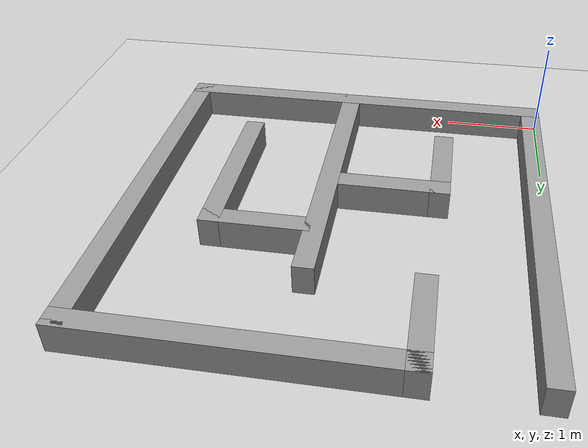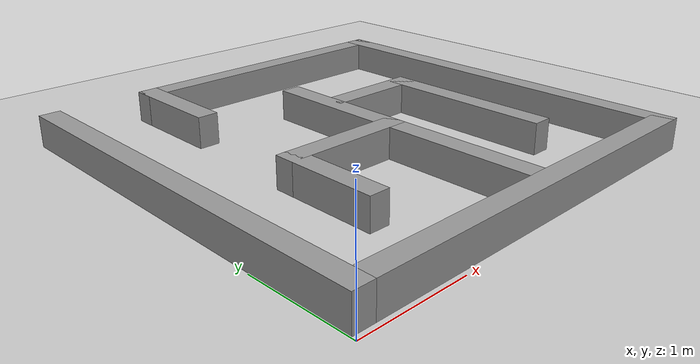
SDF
<sdf version="1.7">
 <world name="default">
  <scene><ambient>0.4 0.4 0.4 1</ambient><background>0.7 0.7 0.7 1</background><shadows>1</shadows></scene>
  <light name="sun" type="directional">
   <pose>0 0 10 0 -0 0</pose>
   <diffuse>0.8 0.8 0.8 1</diffuse>
   <specular>0.2 0.2 0.2 1</specular>
   <attenuation>
    <range>1000</range>
    <constant>0.9</constant>
    <linear>0.01</linear>
    <quadratic>0.001</quadratic>
   </attenuation>
   <direction>-0.5 0.1 -0.9</direction>
   <spot><inner_angle>0</inner_angle><outer_angle>0</outer_angle><falloff>0</falloff></spot>
  </light>
  <model name="ground_plane">
   <static>1</static>
   <link name="link">
    <collision name="collision">
     <geometry><plane><normal>0 0 1</normal><size>100 100</size></plane></geometry>
     <surface>
      <contact><collide_bitmask>65535</collide_bitmask></contact>
      <friction><ode><mu>100</mu><mu2>50</mu2></ode></friction>
     </surface>
    </collision>
    <visual name="visual">
     <cast_shadows>0</cast_shadows>
     <geometry><plane><normal>0 0 1</normal><size>100 100</size></plane></geometry>
     <material>
      <script><uri>file://media/materials/scripts/gazebo.material</uri><name>Gazebo/Grey</name></script>
     </material>
    </visual>
   </link>
  </model>
  <physics type="ode">
   <real_time_update_rate>1000</real_time_update_rate>
   <max_step_size>0.001</max_step_size>
   <real_time_factor>1</real_time_factor>
   <ode>
    <solver>
     <type>quick</type>
     <iters>150</iters>
     <precon_iters>0</precon_iters>
     <sor>1.4</sor>
     <use_dynamic_moi_rescaling>1</use_dynamic_moi_rescaling>
    </solver>
    <constraints>
     <cfm>1e-05</cfm>
     <erp>0.2</erp>
     <contact_max_correcting_vel>2000</contact_max_correcting_vel>
     <contact_surface_layer>0.01</contact_surface_layer>
    </constraints>
   </ode>
  </physics>
  <gravity>0 0 -9.8</gravity>
  <magnetic_field>6e-06 2.3e-05 -4.2e-05</magnetic_field>
  <atmosphere type="adiabatic"/>
  <spherical_coordinates>
   <surface_model>EARTH_WGS84</surface_model>
   <latitude_deg>0</latitude_deg>
   <longitude_deg>0</longitude_deg>
   <elevation>0</elevation>
   <heading_deg>0</heading_deg>
  </spherical_coordinates>
  <model name="Maze">
   <pose>4.6087 3.21108 0 0 -0 0</pose>
   <link name="Wall_11">
    <collision name="Wall_11_Collision">
     <geometry><box><size>1.3 0.2 0.3</size></box></geometry>
     <pose>0 0 0.15 0 -0 0</pose>
    </collision>
    <visual name="Wall_11_Visual">
     <pose>0 0 0.15 0 -0 0</pose>
     <geometry><box><size>1.3 0.2 0.3</size></box></geometry>
     <material>
      <script><uri>file://media/materials/scripts/gazebo.material</uri><name>Gazebo/Grey</name></script>
      <ambient>1 1 1 1</ambient>
     </material>
     <meta><layer>0</layer></meta>
    </visual>
    <pose>-3.007 -1.42996 0 0 -0 3.14159</pose>
   </link>
   <link name="Wall_12">
    <collision name="Wall_12_Collision">
     <geometry><box><size>1.05032 0.2 0.3</size></box></geometry>
     <pose>0 0 0.15 0 -0 0</pose>
    </collision>
    <visual name="Wall_12_Visual">
     <pose>0 0 0.15 0 -0 0</pose>
     <geometry><box><size>1.05032 0.2 0.3</size></box></geometry>
     <material>
      <script><uri>file://media/materials/scripts/gazebo.material</uri><name>Gazebo/Grey</name></script>
      <ambient>1 1 1 1</ambient>
     </material>
     <meta><layer>0</layer></meta>
    </visual>
    <pose>-3.557 -1.85496 0 0 -0 -1.5708</pose>
   </link>
   <link name="Wall_14">
    <collision name="Wall_14_Collision">
     <geometry><box><size>1.05 0.2 0.3</size></box></geometry>
     <pose>0 0 0.15 0 -0 0</pose>
    </collision>
    <visual name="Wall_14_Visual">
     <pose>0 0 0.15 0 -0 0</pose>
     <geometry><box><size>1.05 0.2 0.3</size></box></geometry>
     <material>
      <script><uri>file://media/materials/scripts/gazebo.material</uri><name>Gazebo/Grey</name></script>
      <ambient>1 1 1 1</ambient>
     </material>
     <meta><layer>0</layer></meta>
    </visual>
    <pose>-1.893 -0.666963 0 0 -0 0</pose>
   </link>
   <link name="Wall_15">
    <collision name="Wall_15_Collision">
     <geometry><box><size>1.80001 0.2 0.3</size></box></geometry>
     <pose>0 0 0.15 0 -0 0</pose>
    </collision>
    <visual name="Wall_15_Visual">
     <pose>0 0 0.15 0 -0 0</pose>
     <geometry><box><size>1.80001 0.2 0.3</size></box></geometry>
     <material>
      <script><uri>file://media/materials/scripts/gazebo.material</uri><name>Gazebo/Grey</name></script>
      <ambient>1 1 1 1</ambient>
     </material>
     <meta><layer>0</layer></meta>
    </visual>
    <pose>-1.468 -1.46696 0 0 -0 -1.5708</pose>
   </link>
   <link name="Wall_3">
    <collision name="Wall_3_Collision">
     <geometry><box><size>4.05015 0.2 0.3</size></box></geometry>
     <pose>0 0 0.15 0 -0 0</pose>
    </collision>
    <visual name="Wall_3_Visual">
     <pose>0 0 0.15 0 -0 0</pose>
     <geometry><box><size>4.05015 0.2 0.3</size></box></geometry>
     <material>
      <script><uri>file://media/materials/scripts/gazebo.material</uri><name>Gazebo/Grey</name></script>
      <ambient>1 1 1 1</ambient>
     </material>
     <meta><layer>0</layer></meta>
    </visual>
    <pose>-4.5 -1.13996 0 0 -0 -1.5708</pose>
   </link>
   <link name="Wall_4">
    <collision name="Wall_4_Collision">
     <geometry><box><size>4.04968 0.2 0.3</size></box></geometry>
     <pose>0 0 0.15 0 -0 0</pose>
    </collision>
    <visual name="Wall_4_Visual">
     <pose>0 0 0.15 0 -0 0</pose>
     <geometry><box><size>4.04968 0.2 0.3</size></box></geometry>
     <material>
      <script><uri>file://media/materials/scripts/gazebo.material</uri><name>Gazebo/Grey</name></script>
      <ambient>1 1 1 1</ambient>
     </material>
     <meta><layer>0</layer></meta>
    </visual>
    <pose>-2.575 -3.06496 0 0 -0 0</pose>
   </link>
   <link name="Wall_5">
    <collision name="Wall_5_Collision">
     <geometry><box><size>4.04985 0.2 0.3</size></box></geometry>
     <pose>0 0 0.15 0 -0 0</pose>
    </collision>
    <visual name="Wall_5_Visual">
     <pose>0 0 0.15 0 -0 0</pose>
     <geometry><box><size>4.04985 0.2 0.3</size></box></geometry>
     <material>
      <script><uri>file://media/materials/scripts/gazebo.material</uri><name>Gazebo/Grey</name></script>
      <ambient>1 1 1 1</ambient>
     </material>
     <meta><layer>0</layer></meta>
    </visual>
    <pose>-0.65 -1.13996 0 0 -0 1.5708</pose>
   </link>
   <link name="Wall_6">
    <collision name="Wall_6_Collision">
     <geometry><box><size>3.05032 0.2 0.3</size></box></geometry>
     <pose>0 0 0.15 0 -0 0</pose>
    </collision>
    <visual name="Wall_6_Visual">
     <pose>0 0 0.15 0 -0 0</pose>
     <geometry><box><size>3.05032 0.2 0.3</size></box></geometry>
     <material>
      <script><uri>file://media/materials/scripts/gazebo.material</uri><name>Gazebo/Grey</name></script>
      <ambient>1 1 1 1</ambient>
     </material>
     <meta><layer>0</layer></meta>
    </visual>
    <pose>-2.075 0.785037 0 0 -0 3.14159</pose>
   </link>
   <link name="Wall_7">
    <collision name="Wall_7_Collision">
     <geometry><box><size>1.05015 0.2 0.3</size></box></geometry>
     <pose>0 0 0.15 0 -0 0</pose>
    </collision>
    <visual name="Wall_7_Visual">
     <pose>0 0 0.15 0 -0 0</pose>
     <geometry><box><size>1.05015 0.2 0.3</size></box></geometry>
     <material>
      <script><uri>file://media/materials/scripts/gazebo.material</uri><name>Gazebo/Grey</name></script>
      <ambient>1 1 1 1</ambient>
     </material>
     <meta><layer>0</layer></meta>
    </visual>
    <pose>-3.5 0.360037 0 0 -0 -1.5708</pose>
   </link>
   <link name="Wall_9">
    <collision name="Wall_9_Collision">
     <geometry><box><size>3.04967 0.2 0.3</size></box></geometry>
     <pose>0 0 0.15 0 -0 0</pose>
    </collision>
    <visual name="Wall_9_Visual">
     <pose>0 0 0.15 0 -0 0</pose>
     <geometry><box><size>3.04967 0.2 0.3</size></box></geometry>
     <material>
      <script><uri>file://media/materials/scripts/gazebo.material</uri><name>Gazebo/Grey</name></script>
      <ambient>1 1 1 1</ambient>
     </material>
     <meta><layer>0</layer></meta>
    </visual>
    <pose>-2.457 -1.60096 0 0 -0 1.5708</pose>
   </link>
   <static>1</static>
  </model>
 </world>
</sdf>
